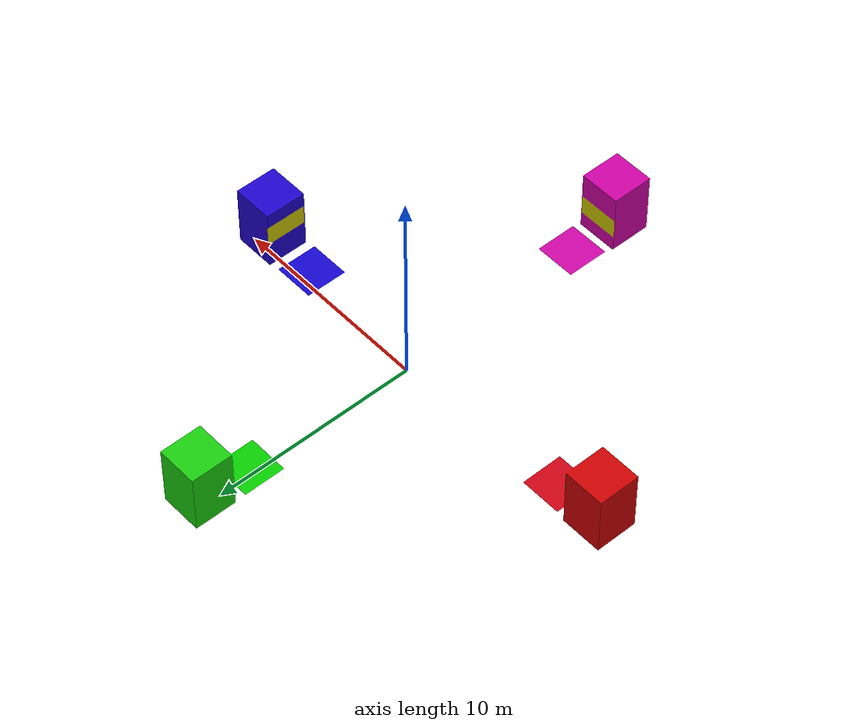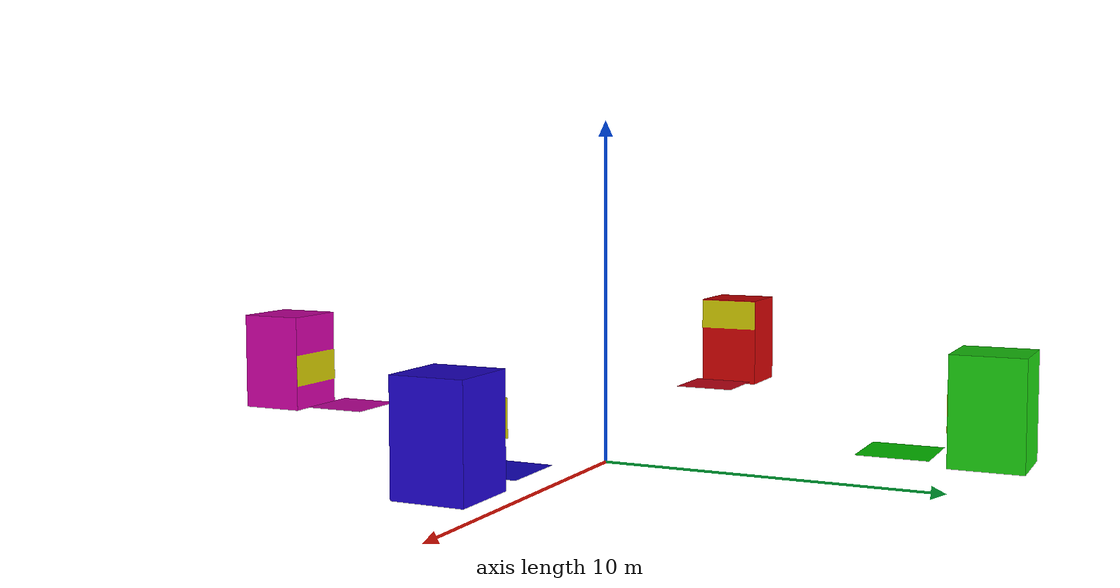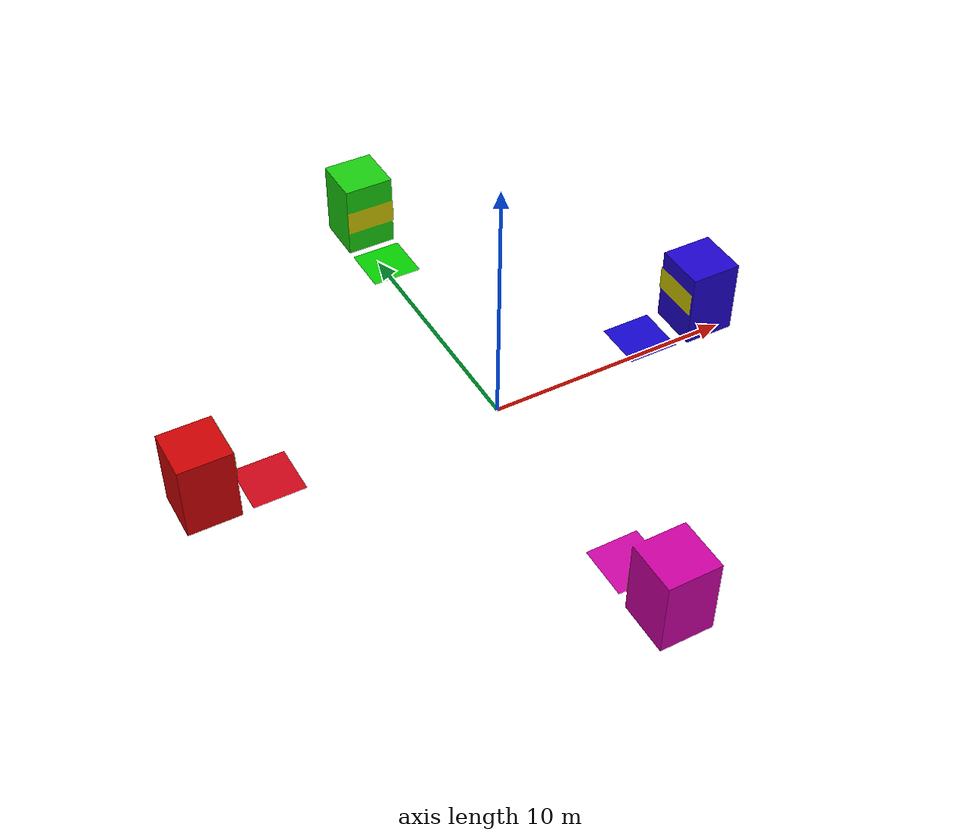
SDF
<?xml version="1.0" ?>
<sdf version="1.6">
  <model name="Arena KRTI 2020 1.5 Kali Lipat">
    <pose>0 0 1 0 0 0</pose>
    <static>true</static>
    <link name="link">
      <collision name="collision">
        <geometry>
          <mesh>
            <uri>model://temp_world/meshes/mesh.dae</uri>
          </mesh>
        </geometry>
      </collision>

      <visual name="visual">
        <geometry>
          <mesh>
            <uri>model://arena_krti_1.5kalilipat/meshes/mesh.dae</uri>
          </mesh>
        </geometry>
      </visual>
    </link>
  </model>
</sdf>
